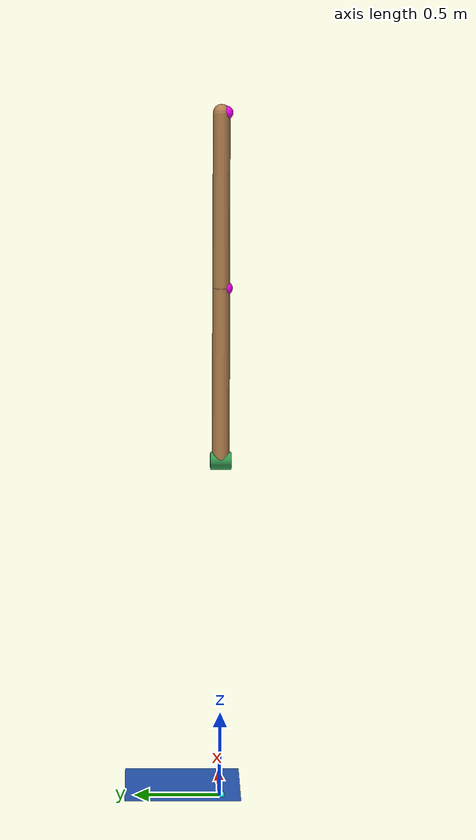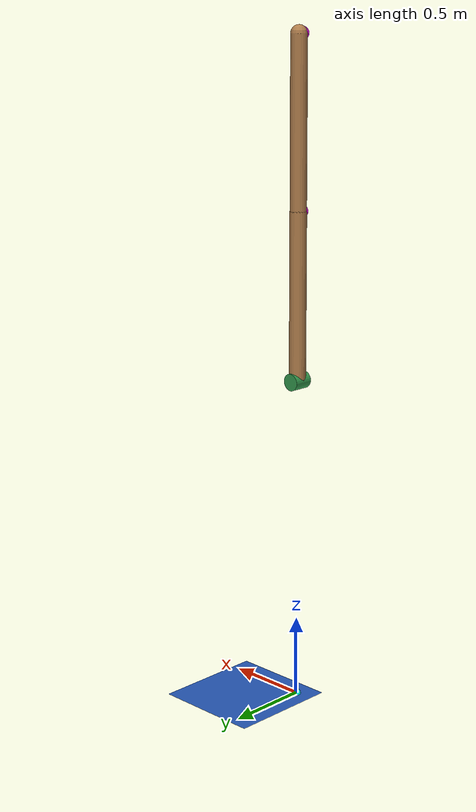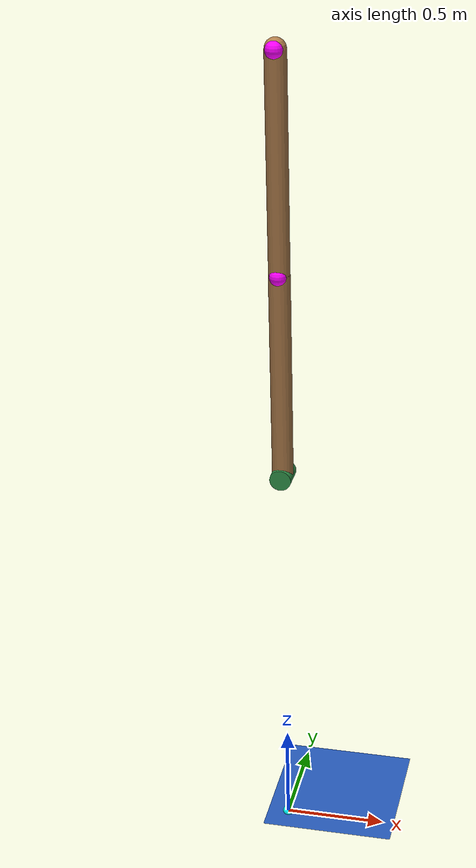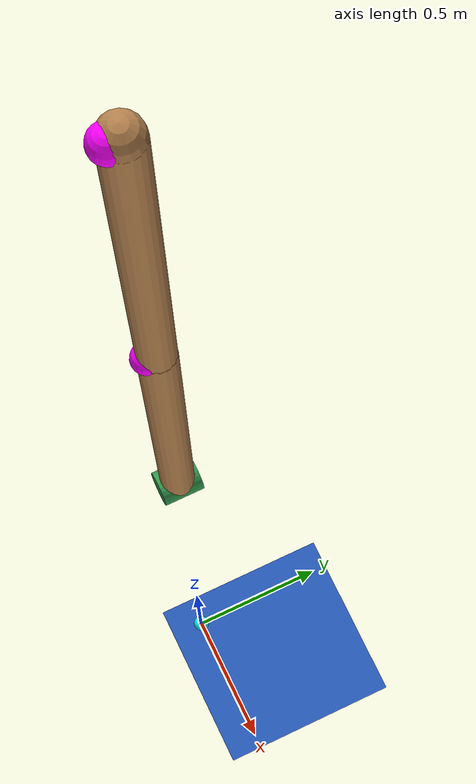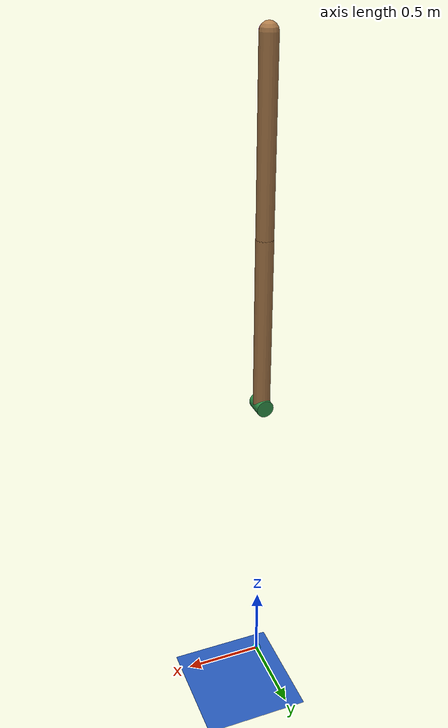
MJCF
<mujoco model="Planar Reach">
  <include file="../common.xml"/>
  <include file="planar_reach.xml" />

  <size memory="4K"/>

  <custom>
    <!-- planner -->
    <numeric name="agent_planner" data="0" />
    <numeric name="agent_horizon" data="2.0" />
    <numeric name="agent_timestep" data="0.01" />
    <numeric name="sampling_sample_width" data="0.01" />
    <numeric name="sampling_control_width" data="0.015" />
    <numeric name="sampling_spline_points" data="10" />
    <numeric name="sampling_exploration" data="0.05" />
    <numeric name="gradient_spline_points" data="10" />
    <numeric name="residual_Goal X" data="1 -1 1" />
    <numeric name="residual_Goal Z" data="3 -1 4" />

    <!-- estimator -->
    <numeric name="estimator_sensor_start" data="3" />
    <numeric name="estimator_number_sensor" data="2" />
  </custom>

  <sensor>
    <!-- cost -->
    <user name="Distance" dim="2" user="0 50.0 0 100.0"/>
    <user name="Velocity" dim="2" user="0  1.0 0 10.0"/>
    <user name="Control" dim="2" user="0 0.05 0.0 1.0"/>

    <!-- estimator sensors -->
    <framepos name="elbow_site" objtype="site" objname="elbow_site"/>
    <framepos name="tip_site" objtype="site" objname="tip_site"/>

    <!-- trace -->
    <framepos name="trace0" objtype="site" objname="tip"/>

    <!-- residual -->
    <framepos name="position" objtype="site" objname="tip"/>
    <framelinvel name="velocity" objtype="site" objname="tip"/>
  </sensor>
</mujoco>

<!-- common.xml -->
<mujoco>

    <visual>
        <headlight ambient=".4 .4 .4" diffuse=".8 .8 .8" specular="0.1 0.1 0.1"/>
        <map znear=".01"/>
        <quality shadowsize="2048"/>
        <global elevation="-15"/>
    </visual>

    <asset>
        <texture name="blue_grid" type="2d" builtin="checker" rgb1=".02 .14 .44" rgb2=".27 .55 1" width="300" height="300" mark="edge" markrgb="1 1 1"/>
        <material name="blue_grid" texture="blue_grid" texrepeat="1 1" texuniform="true" reflectance=".2"/>

        <texture name="grey_grid" type="2d" builtin="checker" rgb1=".26 .26 .26" rgb2=".6 .6 .6" width="300" height="300" mark="edge" markrgb="1 1 1"/>
        <material name="grey_grid" texture="grey_grid" texrepeat="1 1" texuniform="true" reflectance=".2"/>
        <texture name="skybox" type="skybox" builtin="gradient" rgb1=".66 .79 1" rgb2=".9 .91 .93" width="800" height="800"/>

        <material name="self" rgba=".7 .5 .3 1"/>
        <material name="self_default" rgba=".7 .5 .3 1"/>
        <material name="self_highlight" rgba="0 .5 .3 1"/>
        <material name="effector" rgba=".7 .4 .2 1"/>
        <material name="effector_default" rgba=".7 .4 .2 1"/>
        <material name="effector_highlight" rgba="0 .5 .3 1"/>
        <material name="decoration" rgba=".2 .6 .3 1"/>
        <material name="eye" rgba="0 .2 1 1"/>
        <material name="target" rgba=".6 .3 .3 1"/>
        <material name="target_default" rgba=".6 .3 .3 1"/>
        <material name="target_highlight" rgba=".6 .3 .3 .4"/>
        <material name="site" rgba=".5 .5 .5 .3"/>
    </asset>

    <size memory="1M"/>

    <statistic extent="0.4" center="0.3 0.1 0"/>

    <visual>
        <quality shadowsize="8192"/>
        <global azimuth="180" elevation="-30"/>
    </visual>

    <default>
        <geom friction="1.0"/>
    </default>

    <compiler angle="radian" autolimits="true"/>

    <asset>
        <mesh name="apple" file="../../shared_assets/apple/apple.obj" />
        <mesh name="apple_contact0" file="../../shared_assets/apple/contact0.stl"  />
        <mesh name="apple_contact1" file="../../shared_assets/apple/contact1.stl"  />

        <mesh name="doorknob" file="../../shared_assets/doorknob/doorknob.obj" />

        <mesh name="flashlight" file="../../shared_assets/flashlight/flashlight.obj" />
        <mesh name="flashlight_contact0" file="../../shared_assets/flashlight/contact0.stl"  />
        <mesh name="flashlight_contact1" file="../../shared_assets/flashlight/contact1.stl"  />

        <mesh name="hammer" file="../../shared_assets/hammer/hammer.obj" />
        <mesh name="hammer_contact0" file="../../shared_assets/hammer/contact0.stl"  />
        <mesh name="hammer_contact1" file="../../shared_assets/hammer/contact1.stl"  />

        <mesh name="phone" file="../../shared_assets/phone/phone.obj" />
        <mesh name="phone_contact0" file="../../shared_assets/phone/contact0.stl"  />
        <mesh name="phone_contact1" file="../../shared_assets/phone/contact1.stl"  />
        <mesh name="phone_contact2" file="../../shared_assets/phone/contact2.stl"  />

        <mesh name="stapler" file="../../shared_assets/stapler/stapler.obj" />
        <mesh name="stapler_contact0" file="../../shared_assets/stapler/contact0.stl"  />
        <mesh name="stapler_contact1" file="../../shared_assets/stapler/contact1.stl"  />
        <mesh name="stapler_contact2" file="../../shared_assets/stapler/contact2.stl"  />
        <mesh name="stapler_contact3" file="../../shared_assets/stapler/contact3.stl"  />
        <mesh name="stapler_contact4" file="../../shared_assets/stapler/contact4.stl"  />

        <mesh name="waterbottle" file="../../shared_assets/waterbottle/waterbottle.obj" />
        <mesh name="waterbottle_contact0" file="../../shared_assets/waterbottle/contact0.stl"  />
        <mesh name="waterbottle_contact1" file="../../shared_assets/waterbottle/contact1.stl"  />
    </asset>

</mujoco>

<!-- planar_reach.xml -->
<mujoco model="planar_reach">
  <default>
    <joint damping=".05"/>
    <geom type="capsule" mass="1"/>
  </default>

  <option timestep="0.01" gravity="0 0 0">
    <flag constraint="disable" energy="enable"/>
  </option>

  <visual>
    <global offwidth="1920" offheight="1080"/>
  </visual>>

  <worldbody>
    <light name="light" pos="0 0 6"/>
    <geom name="floor" size="3 3 .2" type="plane" material="blue_grid"/>
    <site name="target" type="sphere" pos="0 0 4" size="0.2" material="target" group="3"/>
    <camera name="fixed" pos="0 -6 2" zaxis="0 -1 0"/>
    <camera name="lookat" mode="targetbodycom" target="upper_arm" pos="0 -2 3"/>
    <!-- arm -->
    <body name="upper_arm" pos="0 0 2">
      <joint name="shoulder" type="hinge" axis="0 1 0"/>
      <geom name="upper_arm_decoration" material="decoration" type="cylinder" fromto="0 -.06 0 0 .06 0" size="0.051" mass="0"/>
      <geom name="upper_arm" fromto="0 0 0 0 0 1" size="0.05" material="self"/>
      <site name="elbow_site" pos="0 -0.025 1.0" rgba="1 0 1 1" type="sphere" size="0.04"/>
      <body name="lower_arm" pos="0 0 1">
        <joint name="elbow" type="hinge" axis="0 1 0"/>
        <geom name="lower_arm" fromto="0 0 0 0 0 1" size="0.049" material="self"/>
        <site name="tip" pos="0 0 1" size="0.01"/>
        <site name="tip_site" pos="0 -0.025 1.0" rgba="1 0 1 1" type="sphere" size="0.04"/>
      </body>
    </body>

    <body name="mocap_elbow" mocap="true">
      <geom type="sphere" size="0.03" rgba="0 1 1 1" contype="0" conaffinity="0"/>
    </body>
    <body name="mocap_tip" mocap="true">
      <geom type="sphere" size="0.03" rgba="0 1 1 1" contype="0" conaffinity="0"/>
    </body>
  </worldbody>

   <actuator>
    <motor name="shoulder" joint="shoulder" gear="2" ctrllimited="true" ctrlrange="-1 1"/>
    <motor name="elbow" joint="elbow" gear="2" ctrllimited="true" ctrlrange="-1 1"/>
  </actuator>
</mujoco>
